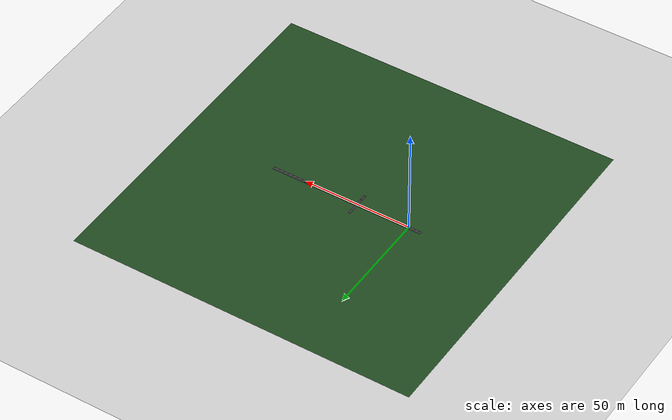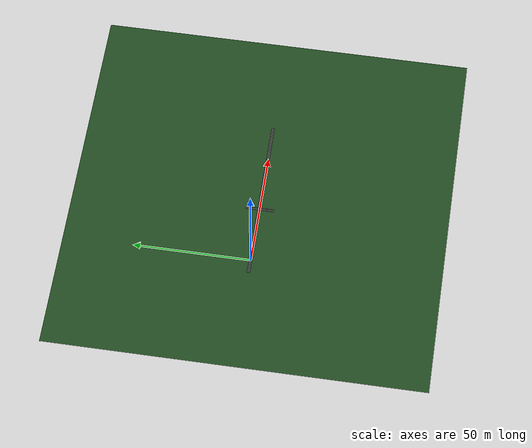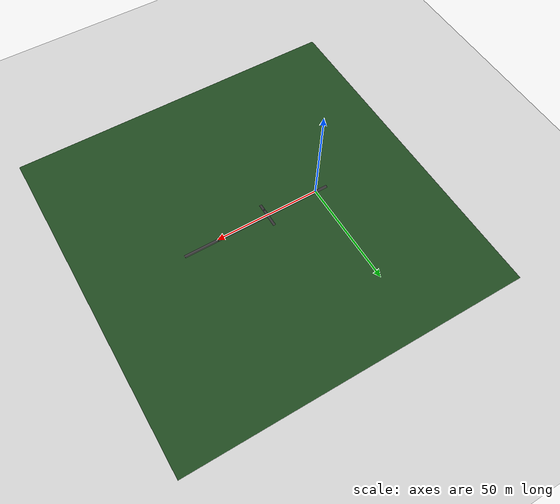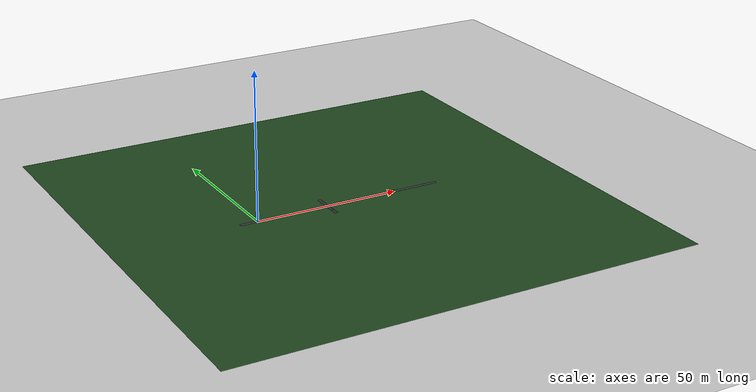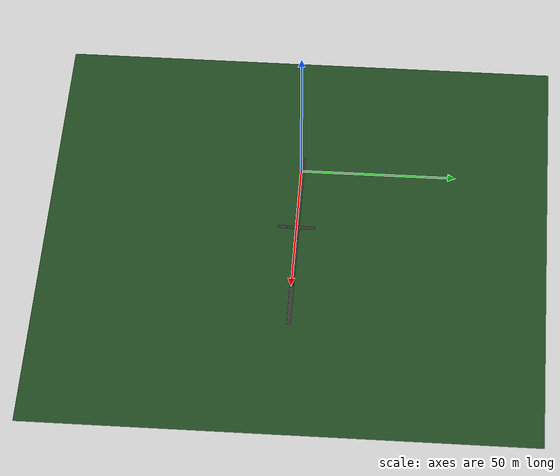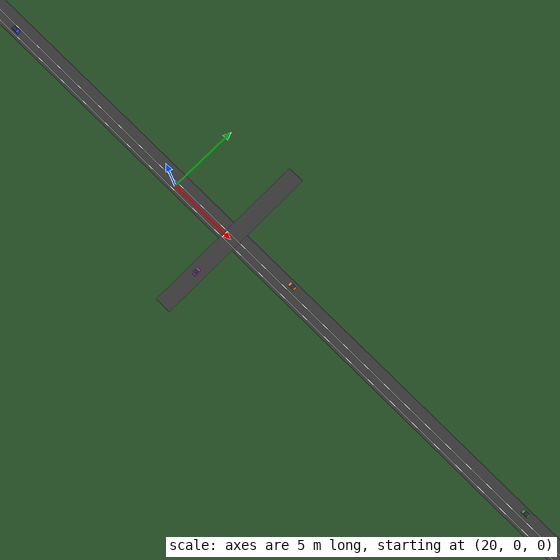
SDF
<?xml version="1.0"?>
<sdf version="1.6">
  <world name="road_with_traffic">
    <physics name="default_physics" default="true" type="ode">
      <max_step_size>0.001</max_step_size>
      <real_time_factor>1.0</real_time_factor>
    </physics>

    <plugin name="gazebo_ros_state" filename="libgazebo_ros_state.so">
      <ros><namespace>/gazebo</namespace></ros>
      <update_rate>1.0</update_rate>
    </plugin>

    <include><uri>model://sun</uri></include>
    <include><uri>model://ground_plane</uri></include>

    <model name="grass">
      <static>true</static>
      <pose>30 0 0.001 0 0 0</pose>
      <link name="link">
        <visual name="visual">
          <geometry><box><size>160 160 0.001</size></box></geometry>
          <material><ambient>0.12 0.28 0.12 1</ambient><diffuse>0.12 0.28 0.12 1</diffuse></material>
        </visual>
      </link>
    </model>

    <model name="road_main">
      <static>true</static>
      <pose>30 0.25 0.002 0 0 0</pose>
      <link name="link">
        <visual name="visual">
          <geometry><box><size>72 1.4 0.001</size></box></geometry>
          <material><ambient>0.2 0.2 0.2 1</ambient><diffuse>0.2 0.2 0.2 1</diffuse></material>
        </visual>
      </link>
    </model>

    <model name="road_crossing">
      <static>true</static>
      <pose>25 0 0.0021 0 0 0</pose>
      <link name="link">
        <visual name="visual">
          <geometry><box><size>1.2 12 0.001</size></box></geometry>
          <material><ambient>0.2 0.2 0.2 1</ambient><diffuse>0.2 0.2 0.2 1</diffuse></material>
        </visual>
      </link>
    </model>

    <model name="lane_right">
      <static>true</static>
      <pose>30 -0.25 0.003 0 0 0</pose>
      <link name="link">
        <visual name="visual">
          <geometry><box><size>72 0.05 0.001</size></box></geometry>
          <material><ambient>1 1 1 1</ambient><diffuse>1 1 1 1</diffuse></material>
        </visual>
      </link>
    </model>

    <model name="lane_left">
      <static>true</static>
      <pose>30 0.25 0.003 0 0 0</pose>
      <link name="link">
        <visual name="visual">
          <geometry><box><size>72 0.05 0.001</size></box></geometry>
          <material><ambient>1 1 1 1</ambient><diffuse>1 1 1 1</diffuse></material>
        </visual>
      </link>
    </model>

    <model name="lead_car">
      <pose>5.0 0.0 0 0 0 0</pose>
      <link name="body">
        <kinematic>true</kinematic>
        <gravity>false</gravity>
        <inertial><mass>5.0</mass>
          <inertia><ixx>0.1</ixx><iyy>0.1</iyy><izz>0.1</izz><ixy>0</ixy><ixz>0</ixz><iyz>0</iyz></inertia>
        </inertial>
        <collision name="collision">
          <pose>0 0 0.225 0 0 0</pose>
          <geometry><box><size>0.5 0.25 0.35</size></box></geometry>
        </collision>
        <visual name="body">
          <pose>0 0 0.18 0 0 0</pose>
          <geometry><box><size>0.5 0.25 0.26</size></box></geometry>
          <material><ambient>0.1 0.3 0.8 1</ambient><diffuse>0.1 0.3 0.8 1</diffuse></material>
        </visual>
        <visual name="cabin">
          <pose>-0.03 0 0.36 0 0 0</pose>
          <geometry><box><size>0.28 0.22 0.1</size></box></geometry>
          <material><ambient>0.15 0.15 0.2 1</ambient><diffuse>0.15 0.15 0.2 1</diffuse></material>
        </visual>
      </link>
    </model>

    <model name="oncoming_car_1">
      <pose>30.0 0.6 0 0 0 3.1416</pose>
      <link name="body">
        <kinematic>true</kinematic>
        <gravity>false</gravity>
        <inertial><mass>5.0</mass>
          <inertia><ixx>0.1</ixx><iyy>0.1</iyy><izz>0.1</izz><ixy>0</ixy><ixz>0</ixz><iyz>0</iyz></inertia>
        </inertial>
        <collision name="collision">
          <pose>0 0 0.225 0 0 0</pose>
          <geometry><box><size>0.5 0.25 0.35</size></box></geometry>
        </collision>
        <visual name="body">
          <pose>0 0 0.18 0 0 0</pose>
          <geometry><box><size>0.5 0.25 0.26</size></box></geometry>
          <material><ambient>0.9 0.5 0.1 1</ambient><diffuse>0.9 0.5 0.1 1</diffuse></material>
        </visual>
        <visual name="cabin">
          <pose>-0.03 0 0.36 0 0 0</pose>
          <geometry><box><size>0.28 0.22 0.1</size></box></geometry>
          <material><ambient>0.15 0.15 0.2 1</ambient><diffuse>0.15 0.15 0.2 1</diffuse></material>
        </visual>
      </link>
    </model>

    <model name="oncoming_car_2">
      <pose>50.0 0.6 0 0 0 3.1416</pose>
      <link name="body">
        <kinematic>true</kinematic>
        <gravity>false</gravity>
        <inertial><mass>5.0</mass>
          <inertia><ixx>0.1</ixx><iyy>0.1</iyy><izz>0.1</izz><ixy>0</ixy><ixz>0</ixz><iyz>0</iyz></inertia>
        </inertial>
        <collision name="collision">
          <pose>0 0 0.225 0 0 0</pose>
          <geometry><box><size>0.5 0.25 0.35</size></box></geometry>
        </collision>
        <visual name="body">
          <pose>0 0 0.18 0 0 0</pose>
          <geometry><box><size>0.5 0.25 0.26</size></box></geometry>
          <material><ambient>0.1 0.6 0.2 1</ambient><diffuse>0.1 0.6 0.2 1</diffuse></material>
        </visual>
        <visual name="cabin">
          <pose>-0.03 0 0.36 0 0 0</pose>
          <geometry><box><size>0.28 0.22 0.1</size></box></geometry>
          <material><ambient>0.15 0.15 0.2 1</ambient><diffuse>0.15 0.15 0.2 1</diffuse></material>
        </visual>
      </link>
    </model>

    <model name="crossing_car">
      <pose>25.0 -3.0 0 0 0 1.5708</pose>
      <link name="body">
        <kinematic>true</kinematic>
        <gravity>false</gravity>
        <inertial><mass>5.0</mass>
          <inertia><ixx>0.1</ixx><iyy>0.1</iyy><izz>0.1</izz><ixy>0</ixy><ixz>0</ixz><iyz>0</iyz></inertia>
        </inertial>
        <collision name="collision">
          <pose>0 0 0.225 0 0 0</pose>
          <geometry><box><size>0.5 0.25 0.35</size></box></geometry>
        </collision>
        <visual name="body">
          <pose>0 0 0.18 0 0 0</pose>
          <geometry><box><size>0.5 0.25 0.26</size></box></geometry>
          <material><ambient>0.6 0.2 0.7 1</ambient><diffuse>0.6 0.2 0.7 1</diffuse></material>
        </visual>
        <visual name="cabin">
          <pose>-0.03 0 0.36 0 0 0</pose>
          <geometry><box><size>0.28 0.22 0.1</size></box></geometry>
          <material><ambient>0.15 0.15 0.2 1</ambient><diffuse>0.15 0.15 0.2 1</diffuse></material>
        </visual>
      </link>
    </model>
  </world>
</sdf>
